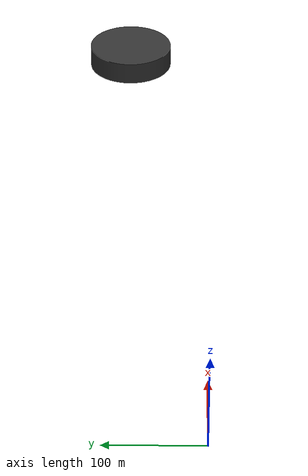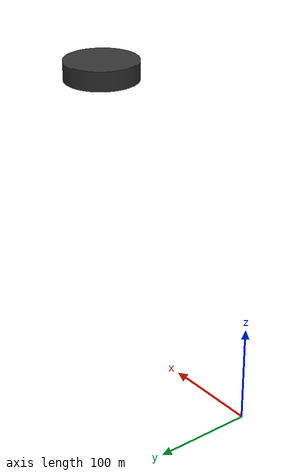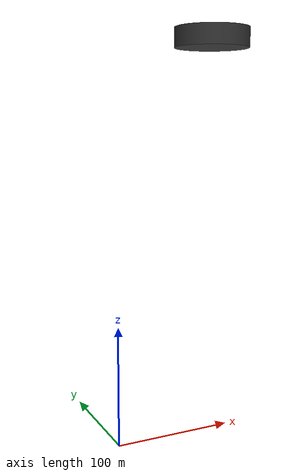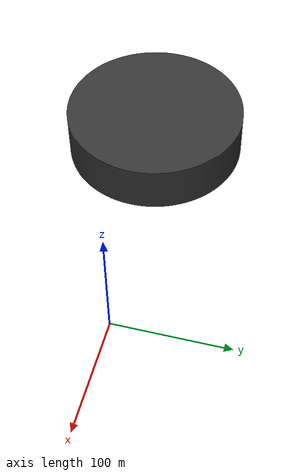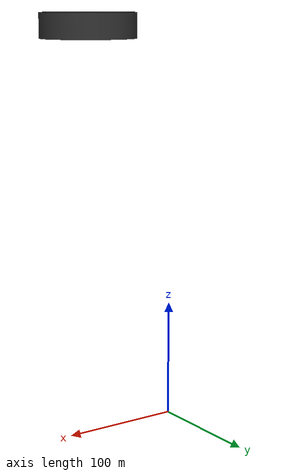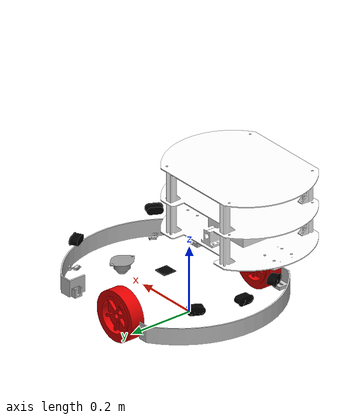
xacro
<?xml version="1.0"?>

<robot name="amr" xmlns:xacro="http://ros.org/wiki/xacro">

  <xacro:arg name="is_ignition" default="true"/>

  <xacro:arg name="is_sim" default="true"/>

  <xacro:include filename="$(find amr_description)/urdf/amr_gazebo.xacro" />

  <xacro:include filename="$(find amr_description)/urdf/amr_ros2_control.xacro" />

  <xacro:property name="base_length"   value="0.600"/>
  <xacro:property name="base_width"    value="0.500"/>
  <xacro:property name="base_height"   value="0.180"/>
  <xacro:property name="base_mass"     value="20.0"/>

  <xacro:property name="wheel_radius"     value="0.075"/>
  <xacro:property name="wheel_width"      value="0.050"/>
  <xacro:property name="wheel_mass"       value="1"/>

  <xacro:property name="wheel_separation" value="0.480"/>

  <xacro:property name="caster_radius"    value="0.020"/>
  <xacro:property name="caster_mass"      value="1"/>

  <xacro:property name="lidar_length"     value="0.08"/>
  <xacro:property name="lidar_width"      value="0.08"/>
  <xacro:property name="lidar_height"     value="0.07"/>
  <xacro:property name="lidar_mass"       value="1"/>

  <xacro:property name="imu_length"       value="0.05"/>
  <xacro:property name="imu_width"        value="0.05"/>
  <xacro:property name="imu_height"       value="0.005"/>
  <xacro:property name="imu_mass"         value="1"/>

  <xacro:property name="bumper_length"       value="0.05"/>
  <xacro:property name="bumper_width"        value="0.6"/>
  <xacro:property name="bumper_height"       value="0.05"/>
  <xacro:property name="bumper_mass"         value="1"/>

  <xacro:property name="ultrasonic_length"       value="0.02"/>
  <xacro:property name="ultrasonic_width"        value="0.05"/>
  <xacro:property name="ultrasonic_height"       value="0.02"/>
  <xacro:property name="ultrasonic_mass"         value="0.01"/>

  <xacro:macro name="box_inertia" params="m l w h">
    <inertial>
      <mass value="${m}"/>
      <inertia
        ixx="${m*(w*w+h*h)/12}" ixy="0.0" ixz="0.0"
        iyy="${m*(l*l+h*h)/12}" iyz="0.0"
        izz="${m*(l*l+w*w)/12}"/>
    </inertial>
  </xacro:macro>

  <xacro:macro name="cylinder_inertia" params="m r h">
    <inertial>
      <mass value="${m}"/>
      <inertia
        ixx="${m*(3*r*r+h*h)/12}" ixy="0.0" ixz="0.0"
        iyy="${m*(3*r*r+h*h)/12}" iyz="0.0"
        izz="${m*r*r/2}"/>
    </inertial>
  </xacro:macro>

  <xacro:macro name="sphere_inertia" params="m r">
    <inertial>
      <mass value="${m}"/>
      <inertia
        ixx="${2*m*r*r/5}" ixy="0.0" ixz="0.0"
        iyy="${2*m*r*r/5}" iyz="0.0"
        izz="${2*m*r*r/5}"/>
    </inertial>
  </xacro:macro>

  <link name="base_footprint"/>

  <!-- ==================== Base Link ==================== -->

  <link name="base_link">
    <xacro:box_inertia m="${base_mass}"
                       l="${base_length}"
                       w="${base_width}"
                       h="${base_height}"/>
    <visual>
      <origin xyz="0 0 0" rpy="0 0 0" />
      <geometry>
        <mesh filename="package://amr_description/meshes/Base_Link.STL" scale="0.001 0.001 0.001"/>
      </geometry>
      <material name="">
        <color rgba="1 1 1 1" />
      </material>
    </visual>
    <collision>
      <origin xyz="0 0 0" rpy="0 0 0" />
      <geometry>
        <mesh filename="package://amr_description/meshes/Base_Link.STL" scale="0.001 0.001 0.001"/>
      </geometry>
    </collision>
  </link>

  <joint name="Base_Footprint_Joint" type="fixed">
    <parent link="base_footprint"/>
    <child  link="base_link"/>
    <origin xyz="0 0 ${wheel_radius}" rpy="0 0 0"/>
  </joint>

  <!-- ==================== Right Wheel ==================== -->

  <link name="Right_Wheel">
    <xacro:cylinder_inertia m="${wheel_mass}"
                            r="${wheel_radius}"
                            h="${wheel_width}"/>
    <visual>
      <origin xyz="0 0 0" rpy="0 0 0" />
      <geometry>
        <mesh filename="package://amr_description/meshes/Right_Wheel.STL" scale="0.001 0.001 0.001"/>
      </geometry>
      <material name="">
        <color rgba="0.9 0 0 1" />
      </material>
    </visual>
    <collision>
      <origin xyz="0 0 0" rpy="1.5707 0 0"/>
      <geometry>
        <cylinder radius="0.075" length="0.050"/>
      </geometry>
    </collision>
  </link>

  <joint name="Right_Wheel_Joint" type="continuous">
    <parent link="base_link"/>
    <child  link="Right_Wheel"/>
    <origin xyz="0 -${wheel_separation/2} 0" rpy="0 0 0"/>
    <axis xyz="0 1 0"/>
  </joint>

  <!-- ==================== Left Wheel ==================== -->

  <link name="Left_Wheel">
    <xacro:cylinder_inertia m="${wheel_mass}"
                            r="${wheel_radius}"
                            h="${wheel_width}"/>
    <visual>
      <origin xyz="0 0 0" rpy="0 0 0" />
      <geometry>
        <mesh filename="package://amr_description/meshes/Left_Wheel.STL" scale="0.001 0.001 0.001"/>
      </geometry>
      <material name="">
        <color rgba="0.9 0 0 1" />
      </material>
    </visual>
    <collision>
      <origin xyz="0 0 0" rpy="1.5707 0 0"/>
      <geometry>
        <cylinder radius="0.075" length="0.050"/>
      </geometry>
    </collision>
  </link>

  <joint name="Left_Wheel_Joint" type="continuous">
    <parent link="base_link"/>
    <child  link="Left_Wheel"/>
    <origin xyz="0 ${wheel_separation/2} 0" rpy="0 0 0"/>
    <axis xyz="0 1 0"/>
  </joint>

  <!-- ==================== Caster ==================== -->

  <link name="Caster">
    <xacro:sphere_inertia m="${caster_mass}" r="${caster_radius}"/>
    <visual>
      <origin xyz="0 0 0" rpy="0 0 0" />
      <geometry>
        <mesh filename="package://amr_description/meshes/Caster.STL" scale="0.001 0.001 0.001" />
      </geometry>
      <material name="">
        <color rgba="0.6 0.6 0.6 1" />
      </material>
    </visual>
    <collision>
      <origin xyz="0 0 0" rpy="0 0 0"/>
      <geometry>
        <mesh filename="package://amr_description/meshes/Caster.STL" scale="0.001 0.001 0.001" />
      </geometry>
    </collision>
  </link>

  <joint name="Caster_Joint" type="fixed">
    <parent link="base_link"/>
    <child  link="Caster"/>
    <origin xyz="0.290 0 -0.041" rpy="0 0 0"/>
  </joint>

  <!-- ==================== Lidar ==================== -->

  <link name="Lidar_Link">
    <xacro:box_inertia m="${lidar_mass}"
                       l="${lidar_length}"
                       w="${lidar_width}"
                       h="${lidar_height}"/>
    <visual>
      <origin xyz="0 0 0" rpy="0 0 ${pi}" />
      <geometry>
        <mesh filename="package://amr_description/meshes/Lidar.STL" />
      </geometry>
      <material name="">
        <color rgba="0.2 0.2 0.2 1" />
      </material>
    </visual>
    <collision>
      <origin xyz="0 0 0" rpy="0 0 ${pi}"/>
      <geometry>
        <box size="0.100 0.070 0.055"/>
      </geometry>
    </collision>
  </link>

  <joint name="Laser_Joint" type="fixed">
    <parent link="base_link"/>
    <child  link="Lidar_Link"/>
    <origin xyz="0.1992 0.0011384 0.183" rpy="0 0 0"/>
  </joint>

<!-- ==================== IMU  ==================== -->

  <link name="IMU_Link">
    <xacro:box_inertia m="${imu_mass}"
                       l="${imu_length}"
                       w="${imu_width}"
                       h="${imu_height}"/>
    <visual>
      <origin xyz="0 0 0" rpy="0 0 0" />
      <geometry>
        <mesh filename="package://amr_description/meshes/IMU.STL" scale="0.001 0.001 0.001"/>
      </geometry>
      <material name="">
        <color rgba="0 0 0 1"/>
      </material>
    </visual>
    <collision>
      <origin xyz="0 0 0" rpy="0 0 0"/>
      <geometry>
        <mesh filename="package://amr_description/meshes/IMU.STL" scale="0.001 0.001 0.001"/>
      </geometry>
    </collision>
  </link>

  <joint name="IMU_Joint" type="fixed">
    <parent link="base_link"/>
    <child  link="IMU_Link"/>
    <origin xyz="0.10331 0 0.0095" rpy="0 0 0"/>
  </joint>

  <!-- ==================== FRONT BUMPER ==================== -->
  <link name="Front_Bumper">
    <xacro:box_inertia m="${bumper_mass}"
                       l="${bumper_length}"
                       w="${bumper_width}"
                       h="${bumper_height}"/>
    <visual>
      <origin xyz="0 0 0" rpy="0 0 0" />
      <geometry>
        <mesh filename="package://amr_description/meshes/Front_Bumper.STL" scale="0.001 0.001 0.001"/>
      </geometry>
      <material name="">
        <color rgba="0.8 0.8 0.8 1" />
      </material>
    </visual>
    <collision>
      <origin xyz="0 0 0" rpy="0 0 0"/>
      <geometry>
        <mesh filename="package://amr_description/meshes/Front_Bumper.STL" scale="0.001 0.001 0.001"/>
      </geometry>
    </collision>
  </link>

  <joint name="Front_Bumper_Joint" type="prismatic">
    <parent link="base_link"/>
    <child  link="Front_Bumper"/>
    <origin xyz="0.328 0.00125 -0.007" rpy="0 0 0"/>
    <axis xyz="1 0 0"/>
    <limit lower="-0.01" upper="0" effort="20" velocity="0.1"/>
  </joint>

  <!-- ==================== REAR BUMPER ==================== -->
  <link name="Rear_Bumper">
    <xacro:box_inertia m="${bumper_mass}"
                       l="${bumper_length}"
                       w="${bumper_width}"
                       h="${bumper_height}"/>
    <visual>
      <origin xyz="0 0 0" rpy="0 0 0" />
      <geometry>
        <mesh filename="package://amr_description/meshes/Rear_Bumper.STL" scale="0.001 0.001 0.001"/>
      </geometry>
      <material name="">
        <color rgba="0.8 0.8 0.8 1" />
      </material>
    </visual>
    <collision>
      <origin xyz="0 0 0" rpy="0 0 0"/>
      <geometry>
        <mesh filename="package://amr_description/meshes/Rear_Bumper.STL" scale="0.001 0.001 0.001"/>
      </geometry>
    </collision>
  </link>

  <joint name="Rear_Bumper_Joint" type="prismatic">
    <parent link="base_link"/>
    <child  link="Rear_Bumper"/>
    <origin xyz="-0.20913 0.00125 -0.007" rpy="0 0 0"/>
    <axis xyz="1 0 0"/>
    <limit lower="0" upper="0.01" effort="20" velocity="0.1"/>
  </joint>

  <!-- ==================== Ultrasonic 1 ==================== -->

  <link name="Ultrasonic_1">
    <xacro:box_inertia m="${ultrasonic_mass}"
                       l="${ultrasonic_length}"
                       w="${ultrasonic_width}"
                       h="${ultrasonic_height}"/>
    <visual>
      <origin xyz="0 0 0" rpy="0 0 0" />
      <geometry>
        <mesh filename="package://amr_description/meshes/Ultrasonic_1.STL"/>
      </geometry>
      <material name="">
        <color rgba="0 0 0 1" />
      </material>
    </visual>
    <collision>
      <origin xyz="0 0 0" rpy="0 0 0"/>
      <geometry>
        <mesh filename="package://amr_description/meshes/Ultrasonic_1.STL"/>
      </geometry>
    </collision>
  </link>

  <joint name="Ultrasonic_1_Joint" type="fixed">
    <parent link="base_link"/>
    <child  link="Ultrasonic_1"/>
    <origin  xyz="0.327 0.1445 0.062124192966864" rpy="0 0 0"/>
  </joint>

  <!-- ==================== Ultrasonic 2 ==================== -->

  <link name="Ultrasonic_2">
    <xacro:box_inertia m="${ultrasonic_mass}"
                       l="${ultrasonic_length}"
                       w="${ultrasonic_width}"
                       h="${ultrasonic_height}"/>
    <visual>
      <origin xyz="0 0 0" rpy="0 0 0" />
      <geometry>
        <mesh filename="package://amr_description/meshes/Ultrasonic_2.STL"/>
      </geometry>
      <material name="">
        <color rgba="0 0 0 1" />
      </material>
    </visual>
    <collision>
      <origin xyz="0 0 0" rpy="0 0 0"/>
      <geometry>
        <mesh filename="package://amr_description/meshes/Ultrasonic_2.STL"/>
      </geometry>
    </collision>
  </link>

  <joint name="Ultrasonic_2_Joint" type="fixed">
    <parent link="base_link"/>
    <child  link="Ultrasonic_2"/>
    <origin xyz="0.3277 -0.1405 0.062124192966864" rpy="0 0 0"/>
  </joint>

  <!-- ==================== Ultrasonic 3 ==================== -->

  <link name="Ultrasonic_3">
    <xacro:box_inertia m="${ultrasonic_mass}"
                       l="${ultrasonic_length}"
                       w="${ultrasonic_width}"
                       h="${ultrasonic_height}"/>
    <visual>
      <origin xyz="0 0 0" rpy="0 0 0" />
      <geometry>
        <mesh filename="package://amr_description/meshes/Ultrasonic_3.STL"/>
      </geometry>
      <material name="">
        <color rgba="0 0 0 1" />
      </material>
    </visual>
    <collision>
      <origin xyz="0 0 0" rpy="0 0 0"/>
      <geometry>
        <mesh filename="package://amr_description/meshes/Ultrasonic_3.STL"/>
      </geometry>
    </collision>
  </link>

  <joint name="Ultrasonic_3_Joint" type="fixed">
    <parent link="base_link"/>
    <child  link="Ultrasonic_3"/>
    <origin xyz="-0.208 -0.140 0.062124192966864" rpy="0 0 0"/>
  </joint>

  <!-- ==================== Ultrasonic 4 ==================== -->

  <link name="Ultrasonic_4">
    <xacro:box_inertia m="${ultrasonic_mass}"
                       l="${ultrasonic_length}"
                       w="${ultrasonic_width}"
                       h="${ultrasonic_height}"/>
    <visual>
      <origin xyz="0 0 0" rpy="0 0 0" />
      <geometry>
        <mesh filename="package://amr_description/meshes/Ultrasonic_4.STL"/>
      </geometry>
      <material name="">
        <color rgba="0 0 0 1" />
      </material>
    </visual>
    <collision>
      <origin xyz="0 0 0" rpy="0 0 0"/>
      <geometry>
        <mesh filename="package://amr_description/meshes/Ultrasonic_4.STL"/>
      </geometry>
    </collision>
  </link>

  <joint name="Ultrasonic_4_Joint" type="fixed">
    <parent link="base_link"/>
    <child  link="Ultrasonic_4"/>
    <origin xyz="-0.207 0.144 0.062124192966864" rpy="0 0 0"/>
  </joint>

  <!-- ==================== Ultrasonic 5 ==================== -->

  <link name="Ultrasonic_5">
    <xacro:box_inertia m="${ultrasonic_mass}"
                       l="${ultrasonic_length}"
                       w="${ultrasonic_width}"
                       h="${ultrasonic_height}"/>
    <visual>
      <origin xyz="0 0 0" rpy="0 0 -2.652" />
      <geometry>
        <mesh filename="package://amr_description/meshes/Ultrasonic_4.STL"/>
      </geometry>
      <material name="">
        <color rgba="0 0 0 1" />
      </material>
    </visual>
    <collision>
      <origin xyz="0 0 0" rpy="0 0 -2.652"/>
      <geometry>
        <mesh filename="package://amr_description/meshes/Ultrasonic_4.STL"/>
      </geometry>
    </collision>
  </link>

  <joint name="Ultrasonic_5_Joint" type="fixed">
    <parent link="base_link"/>
    <child  link="Ultrasonic_5"/>
    <origin xyz="-0.245 0 0.062124192966864" rpy="0 0 3.14159"/>
  </joint>

</robot>
